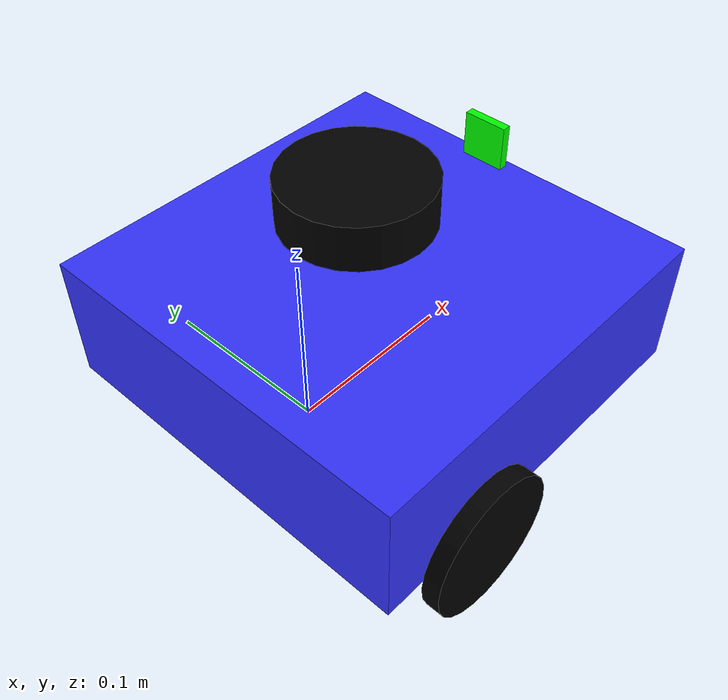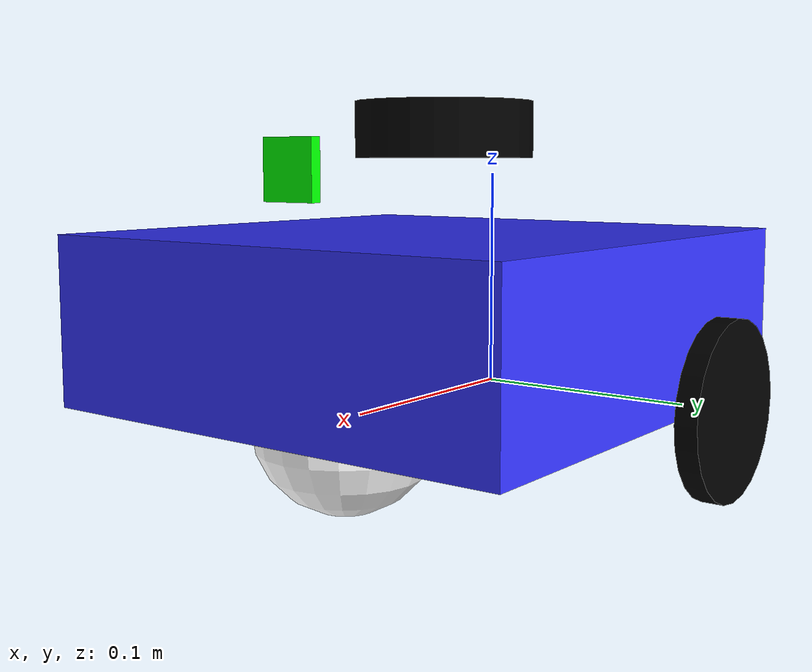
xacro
<?xml version="1.0"?>
<robot xmlns:xacro="http://www.ros.org/wiki/xacro"  name="robot">

    <xacro:arg name="use_ros2_control" default="true"/>
    <xacro:arg name="sim_mode" default="false"/>

    <xacro:include filename="robot_core.xacro" />

    <xacro:if value="$(arg use_ros2_control)">
        <xacro:include filename="ros2_control.xacro" />
    </xacro:if>
    <xacro:unless value = "$(arg use_ros2_control)">
        <xacro:include filename="gazebo_control.xacro" />
    </xacro:unless>

    <xacro:include filename="lidar.xacro" />
    <xacro:include filename="camera.xacro" />
    <xacro:include filename="imu.xacro" />

</robot>

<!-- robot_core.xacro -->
<robot xmlns:xacro="http://www.ros.org/wiki/xacro"  >

    <xacro:include filename="inertial_macros.xacro"/>

    <material name="white">
        <color rgba="1 1 1 1" />
    </material>

    <material name="orange">
        <color rgba="1 0.3 0.1 1" />
    </material>

    <material name="blue">
        <color rgba="0.2 0.2 1 1" />
    </material>

    <material name="black">
        <color rgba="0 0 0 1" />
    </material>

    <material name="red">
        <color rgba="1 0 0 0" />
    </material>

        <material name="green">
        <color rgba="0 1 0 0" />
    </material>

    <!-- BASE LINK -->

    <link name="base_link">

    </link>

    <!-- BASE_FOOTPRINT LINK -->

    <joint name="base_footprint_joint" type="fixed">
        <parent link="base_link"/>
        <child link="base_footprint"/>
        <origin xyz="0 0 0" rpy="0 0 0"/>
    </joint>

    <link name="base_footprint">

    </link>

    <!-- CHASSIS LINK -->
    <joint name="chassis_joint" type="fixed">
        <parent link="base_link"/>
        <child link="chassis"/>
        <origin xyz="-0.05999 0 0"/>
    </joint>

    <link name="chassis">
        <visual>
            <origin xyz="0.1125 0 0.037505"/>
            <geometry>
                <box size="0.225 0.225 0.07501"/>
            </geometry>
            <material name="blue"/>
        </visual>
        <collision>
            <origin xyz="0.1125 0 0.037505"/>
            <geometry>
                <box size="0.225 0.225 0.07501"/>
            </geometry>
        </collision>
        <xacro:inertial_box mass="0.5" x="0.225" y="0.225" z="0.07501">
            <origin xyz="0.1125 0 0.037505" rpy="0 0 0"/>
        </xacro:inertial_box>
    </link>

    <gazebo reference="chassis">
        <material>Gazebo/Blue</material>
    </gazebo>

    <!-- LEFT WHEEL LINK -->

    <joint name="left_wheel_joint" type="continuous">
        <parent link="base_link"/>
        <child link="left_wheel"/>
        <origin xyz="0 0.11975 0" rpy ="-${pi/2} 0 0"/>
        <axis xyz="0 0 1"/>
    </joint>

    <link name="left_wheel">
        <visual>
            <geometry>
                <cylinder radius="0.04" length="0.01"/>
            </geometry>
            <material name="black"/>
        </visual>
        <collision>
            <geometry>
                <cylinder radius="0.04" length="0.01"/>
            </geometry>
        </collision>
        <xacro:inertial_cylinder mass="0.1" length="0.01" radius="0.04">
            <origin xyz="0 0 0" rpy="0 0 0"/>
        </xacro:inertial_cylinder>
    </link>

    <gazebo reference="left_wheel">
        <material>Gazebo/Black</material>
    </gazebo>

    <!-- RIGHT WHEEL LINK -->

    <joint name="right_wheel_joint" type="continuous">
        <parent link="base_link"/>
        <child link="right_wheel"/>
        <origin xyz="0 -0.11975 0" rpy ="${pi/2} 0 0"/>
        <axis xyz="0 0 -1"/>
    </joint>

    <link name="right_wheel">
        <visual>
            <geometry>
                <cylinder radius="0.04" length="0.01"/>
            </geometry>
            <material name="black"/>
        </visual>
        <collision>
            <geometry>
                <cylinder radius="0.04" length="0.01"/>
            </geometry>
        </collision>
        <xacro:inertial_cylinder mass="0.1" length="0.01" radius="0.04">
            <origin xyz="0 0 0" rpy="0 0 0"/>
        </xacro:inertial_cylinder>
    </link>

    <gazebo reference="right_wheel">
        <material>Gazebo/Black</material>
    </gazebo>

    <!-- CASTER WHEEL LINK -->

    <joint name="caster_wheel_joint" type="fixed">
        <parent link="chassis"/>
        <child link="caster_wheel"/>
        <origin xyz="0.16875 0 0"/>
    </joint>

    <link name="caster_wheel">
        <visual>
            <geometry>
                <sphere radius="0.04"/>
            </geometry>
            <material name="white"/>
        </visual>
        <collision>
            <geometry>
                <sphere radius="0.04"/>
            </geometry>
        </collision>
        <!-- Ensure that you validate the masses -->
        <xacro:inertial_sphere mass="0.1" radius="0.04">
            <origin xyz="0 0 0" rpy="0 0 0"/>
        </xacro:inertial_sphere>
    </link>

    <gazebo reference="caster_wheel">
        <material>Gazebo/White</material>
        <mu1 value="0.001"/>
        <mu2 value="0.001"/>
    </gazebo>

</robot>

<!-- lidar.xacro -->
<robot xmlns:xacro="http://www.ros.org/wiki/xacro">

    <joint name="laser_joint" type="fixed">
        <parent link="chassis"/>
        <child link="laser_frame"/>
        <origin xyz="0.1 0 0.12" rpy="0 0 0"/>
    </joint>

    <link name="laser_frame">
        <visual>
            <geometry>
                <cylinder radius="0.04" length="0.025"/>
            </geometry>
            <material name="black"/>
        </visual>
        <collision>
            <geometry>
                <cylinder radius="0.04" length="0.025"/>
            </geometry>
        </collision>
        <xacro:inertial_cylinder mass="0.1" length="0.025" radius="0.04">
            <origin xyz="0 0 0" rpy="0 0 0"/>
        </xacro:inertial_cylinder>
    </link>

    <gazebo reference="laser_frame">
        <material>Gazebo/Red</material>

        <sensor name="laser" type="ray">
            <pose> 0 0 0 0 0 0 </pose>
            <visualize>false</visualize>
            <update_rate>10</update_rate>
            <ray>
                <scan>
                    <horizontal>
                        <samples>360</samples>
                        <min_angle>-3.14</min_angle>
                        <max_angle>3.14</max_angle>
                    </horizontal>
                </scan>
                <range>
                    <min>0.075</min>
                    <max>12</max>
                </range>
            </ray>
            <plugin name="laser_controller" filename="libgazebo_ros_ray_sensor.so">
                <ros>
                    <argument>~/out:=scan</argument>
                </ros>
                <output_type>sensor_msgs/LaserScan</output_type>
                <frame_name>laser_frame</frame_name>
            </plugin>
        </sensor>
    </gazebo>

</robot>

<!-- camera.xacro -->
<robot xmlns:xacro="http://www.ros.org/wiki/xacro">

    <joint name="camera_joint" type="fixed">
        <parent link="chassis"/>
        <child link="camera_link"/>
        <origin xyz="0.200 0 0.10285" rpy="0 0 0"/>
    </joint>

    <link name="camera_link">
        <visual>
            <geometry>
                <box size="0.005 0.025 0.025"/>
            </geometry>
            <material name="green"/>
        </visual>

    </link>

    <joint name="camera_optical_joint" type="fixed">
        <parent link="camera_link"/>
        <child link="camera_link_optical"/>
        <origin xyz="0 0 0" rpy="${-pi/2} 0 ${-pi/2}"/>
    </joint>

    <link name="camera_link_optical"></link>

    <gazebo reference="camera_link">
        <material>Gazebo/Green</material>

        <sensor name="camera" type="camera">
            <pose> 0 0 0 0 0 0 </pose>
            <visualize>true</visualize>
            <update_rate>10</update_rate>
            <camera>
                <horizontal_fov>1.089</horizontal_fov>
                <image>
                    <format>R8G8B8</format>
                    <width>640</width>
                    <height>480</height>
                </image>
                <clip>
                    <near>0.05</near>
                    <far>8.0</far>
                </clip>
            </camera>
            <plugin name="camera_controller" filename="libgazebo_ros_camera.so">
                <frame_name>camera_link_optical</frame_name>
            </plugin>
        </sensor>
    </gazebo>

</robot>

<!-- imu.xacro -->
<robot xmlns:xacro="http://www.ros.org/wiki/xacro">

    <joint name="imu_joint" type="fixed">
        <parent link="base_link"/>
        <child link="imu_link"/>
        <origin xyz="0 0 0" rpy="0 0 0"/>
    </joint>

    <link name="imu_link">
        <visual>
            <geometry>
                <box size ="0.001 0.001 0.001"/>
            </geometry>
        </visual>

        <collision>
            <geometry>
                <box size="0.001 0.001 0.001"/>
            </geometry>
        </collision>

        <xacro:inertial_box mass="0.001" x="0.001" y="0.001" z="0.001">
            <origin xyz="0 0 0" rpy="0 0 0"/>
        </xacro:inertial_box>
    </link>

    <gazebo reference="imu_link">
        <sensor name="imu_sensor" type="imu">
            <plugin name="imu_plugin" filename="libgazebo_ros_imu_sensor.so">
                <initial_orientation_as_reference>false</initial_orientation_as_reference>
                <frame_name>imu_link</frame_name>
                <ros>
                    <namespace>/imu</namespace>
                    <remapping>~/out:=data</remapping>
                </ros>
            </plugin>
            <always_on>true</always_on>
            <update_rate>100</update_rate>
            <visualize>true</visualize>
            <imu>
                <angular_velocity>
                    <x>
                        <noise type="gaussian">
                            <mean>0.0</mean>
                            <stddev>2e-4</stddev>
                            <bias_mean>0.0000075</bias_mean>
                            <bias_stddev>0.0000008</bias_stddev>
                        </noise>
                    </x>
                    <y>
                        <noise type="gaussian">
                            <mean>0.0</mean>
                            <stddev>2e-4</stddev>
                            <bias_mean>0.0000075</bias_mean>
                            <bias_stddev>0.0000008</bias_stddev>
                        </noise>
                    </y>
                    <z>
                        <noise type="gaussian">
                            <mean>0.0</mean>
                            <stddev>2e-4</stddev>
                            <bias_mean>0.0000075</bias_mean>
                            <bias_stddev>0.0000008</bias_stddev>
                        </noise>
                    </z>
                </angular_velocity>
                <linear_acceleration>
                    <x>
                        <noise type="gaussian">
                            <mean>0.0</mean>
                            <stddev>1.7e-2</stddev>
                            <bias_mean>0.1</bias_mean>
                            <bias_stddev>0.001</bias_stddev>
                        </noise>
                    </x>
                    <y>
                        <noise type="gaussian">
                            <mean>0.0</mean>
                            <stddev>1.7e-2</stddev>
                            <bias_mean>0.1</bias_mean>
                            <bias_stddev>0.001</bias_stddev>
                        </noise>
                    </y>
                    <z>
                        <noise type="gaussian">
                            <mean>0.0</mean>
                            <stddev>1.7e-2</stddev>
                            <bias_mean>0.1</bias_mean>
                            <bias_stddev>0.001</bias_stddev>
                        </noise>
                    </z>
                </linear_acceleration>
            </imu>
        </sensor>
    </gazebo>

</robot>
